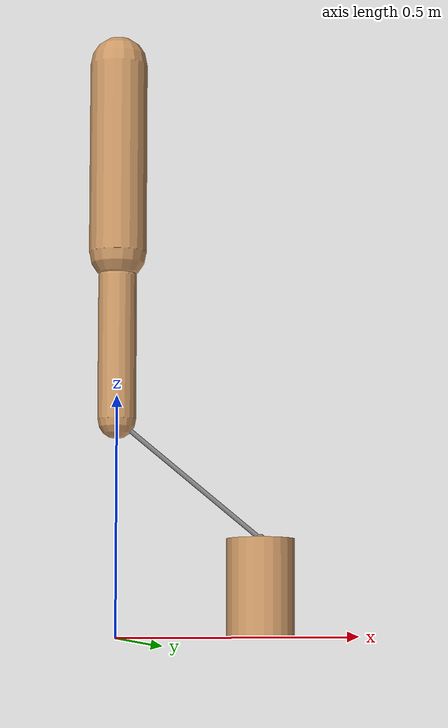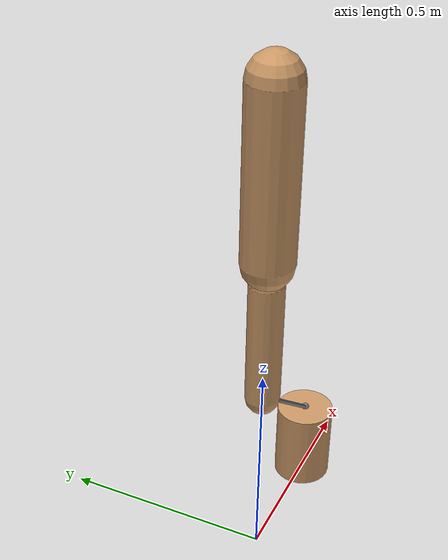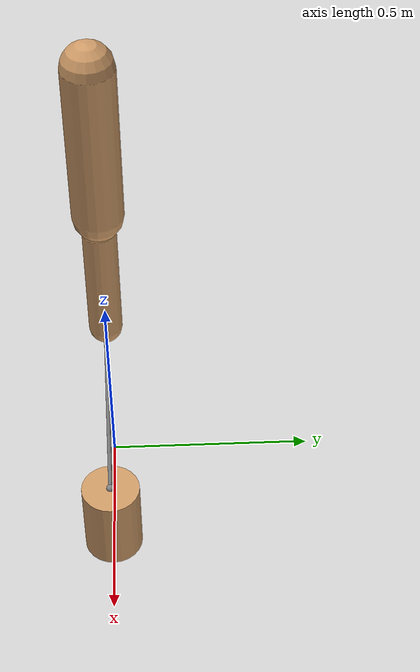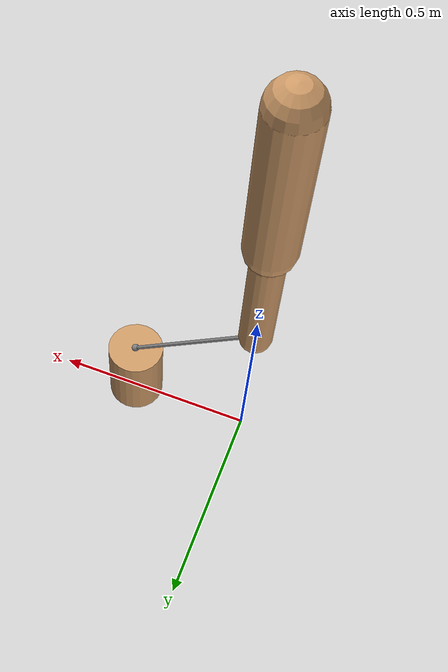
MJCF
<mujoco model="pendulum">
  <default>
    <geom rgba=".8 .6 .4 1"/>
  </default>

  <asset>
    <texture type="skybox" builtin="gradient" rgb1="1 1 1" rgb2=".6 .8 1" width="256" height="256"/>
  </asset>

  <worldbody>
    <light pos="0 1 1" dir="0 -1 -1" diffuse="1 1 1"/>
    <body name="capsule_0" pos="0 0 1" >
      <joint type="ball" pos="0 0 0.2" />
      <geom type="capsule" size="0.06 0.2" />
      <body name="capsule_1" pos="0 0 -0.4">
        <joint type="ball" pos="0 0 0.15" />
        <geom type="capsule" size="0.04 0.15" />
        <site name="end1" pos="0 0 -.15" size="0.01" />
      </body>
    </body>

    <body name="mass" pos="0.3 0 0.1">
      <joint type="free"/>
      <geom size="0.07 0.1" type="cylinder"/>
      <site name="end2" pos="0 0 0.1" size="0.01"/>
    </body>
  </worldbody>

  <tendon>
    <spatial limited="true" range="0 0.6" width="0.005">
      <site site="end1"/>
      <site site="end2"/>
    </spatial>
  </tendon>
</mujoco>
